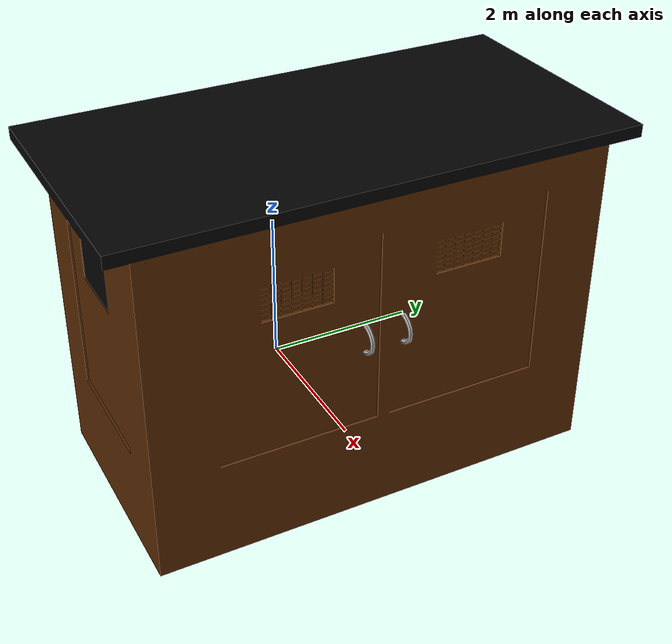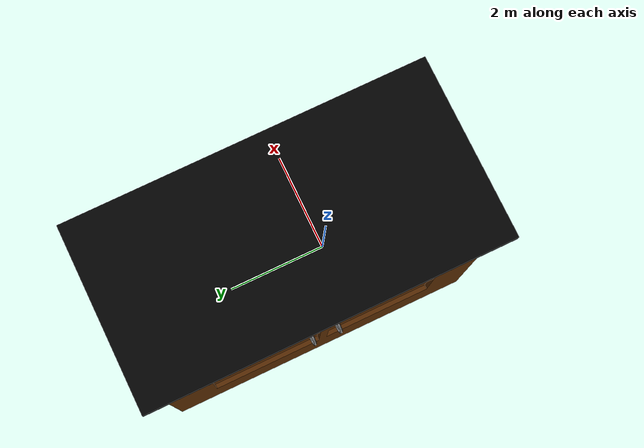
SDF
<?xml version="1.0"?>
<sdf version="1.5">
  <model name="electrical_box">
    <static>true</static>
    <link name="link">
      <pose>0 0 0 0 0 0</pose>

      <visual name="visual">
        <cast_shadows>false</cast_shadows>
        <geometry>
          <mesh>
            <uri>model://electrical_box/meshes/electrical_box.dae</uri>
            <scale> 0.75 0.75 0.75 </scale>
          </mesh>
        </geometry>
      </visual>

      <collision name="collision">
        <geometry>
          <mesh>
            <uri>model://electrical_box/meshes/electrical_box.dae</uri>
          </mesh>
        </geometry>
      </collision>

    </link>
  </model>
</sdf>
